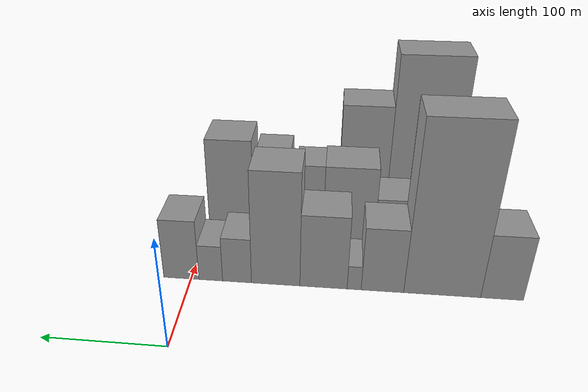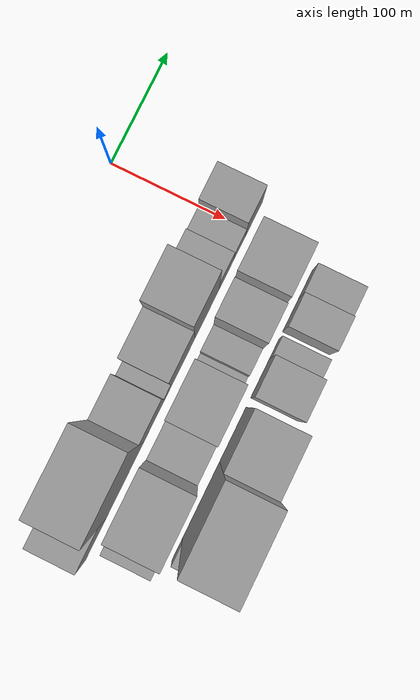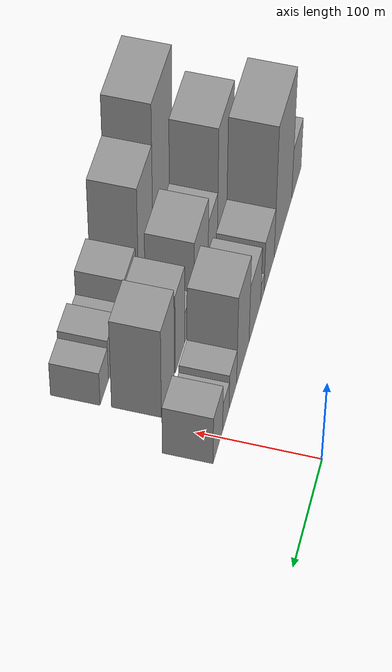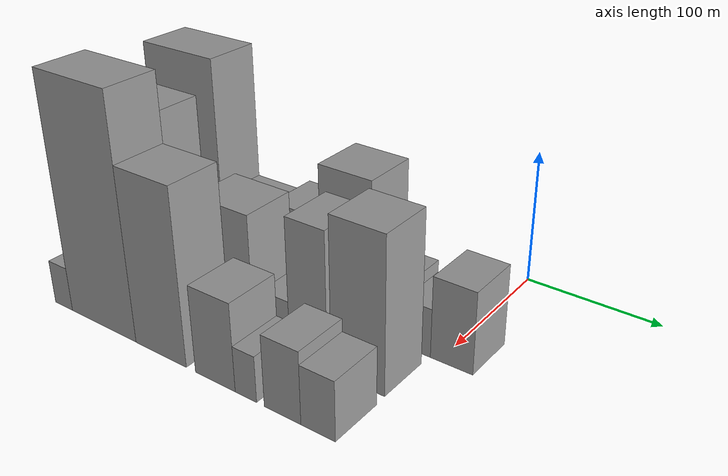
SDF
<sdf version="1.6">
 <world name="default">
  <model name="building_8">
   <static>1</static>
   <pose>100.0000 -262.1933 0 0.000000 0.000000 0.000000</pose>
   <link name="link">
    <pose>0 0 31.50 0 0 0</pose>
    <collision name="collision"><geometry><box><size>40.0000 34.6579 63.0000</size></box></geometry></collision>
    <visual name="visual">
     <cast_shadows>0</cast_shadows>
     <geometry><box><size>40.0000 34.6579 63.0000</size></box></geometry>
     <material>
      <script>
       <uri>model://grey_wall/materials/scripts</uri>
       <uri>model://grey_wall/materials/textures</uri>
       <name>vrc/grey_wall</name>
      </script>
     </material>
    </visual>
   </link>
  </model>
  <model name="building_9">
   <static>1</static>
   <pose>100.0000 -213.1922 0 0.000000 0.000000 0.000000</pose>
   <link name="link">
    <pose>0 0 81.00 0 0 0</pose>
    <collision name="collision"><geometry><box><size>40.0000 63.3443 162.0000</size></box></geometry></collision>
    <visual name="visual">
     <cast_shadows>0</cast_shadows>
     <geometry><box><size>40.0000 63.3443 162.0000</size></box></geometry>
     <material>
      <script>
       <uri>model://grey_wall/materials/scripts</uri>
       <uri>model://grey_wall/materials/textures</uri>
       <name>vrc/grey_wall</name>
      </script>
     </material>
    </visual>
   </link>
  </model>
  <model name="building_10">
   <static>1</static>
   <pose>100.0000 -163.7489 0 0.000000 0.000000 0.000000</pose>
   <link name="link">
    <pose>0 0 31.50 0 0 0</pose>
    <collision name="collision"><geometry><box><size>40.0000 35.5423 63.0000</size></box></geometry></collision>
    <visual name="visual">
     <cast_shadows>0</cast_shadows>
     <geometry><box><size>40.0000 35.5423 63.0000</size></box></geometry>
     <material>
      <script>
       <uri>model://grey_wall/materials/scripts</uri>
       <uri>model://grey_wall/materials/textures</uri>
       <name>vrc/grey_wall</name>
      </script>
     </material>
    </visual>
   </link>
  </model>
  <model name="building_11">
   <static>1</static>
   <pose>100.0000 -140.0537 0 0.000000 0.000000 0.000000</pose>
   <link name="link">
    <pose>0 0 12.00 0 0 0</pose>
    <collision name="collision"><geometry><box><size>40.0000 11.8480 24.0000</size></box></geometry></collision>
    <visual name="visual">
     <cast_shadows>0</cast_shadows>
     <geometry><box><size>40.0000 11.8480 24.0000</size></box></geometry>
     <material>
      <script>
       <uri>model://grey_wall/materials/scripts</uri>
       <uri>model://grey_wall/materials/textures</uri>
       <name>vrc/grey_wall</name>
      </script>
     </material>
    </visual>
   </link>
  </model>
  <model name="building_12">
   <static>1</static>
   <pose>100.0000 -114.0702 0 0.000000 0.000000 0.000000</pose>
   <link name="link">
    <pose>0 0 36.00 0 0 0</pose>
    <collision name="collision"><geometry><box><size>40.0000 40.1191 72.0000</size></box></geometry></collision>
    <visual name="visual">
     <cast_shadows>0</cast_shadows>
     <geometry><box><size>40.0000 40.1191 72.0000</size></box></geometry>
     <material>
      <script>
       <uri>model://grey_wall/materials/scripts</uri>
       <uri>model://grey_wall/materials/textures</uri>
       <name>vrc/grey_wall</name>
      </script>
     </material>
    </visual>
   </link>
  </model>
  <model name="building_13">
   <static>1</static>
   <pose>100.0000 -73.1719 0 0.000000 0.000000 0.000000</pose>
   <link name="link">
    <pose>0 0 55.50 0 0 0</pose>
    <collision name="collision"><geometry><box><size>40.0000 41.6777 111.0000</size></box></geometry></collision>
    <visual name="visual">
     <cast_shadows>0</cast_shadows>
     <geometry><box><size>40.0000 41.6777 111.0000</size></box></geometry>
     <material>
      <script>
       <uri>model://grey_wall/materials/scripts</uri>
       <uri>model://grey_wall/materials/textures</uri>
       <name>vrc/grey_wall</name>
      </script>
     </material>
    </visual>
   </link>
  </model>
  <model name="building_14">
   <static>1</static>
   <pose>100.0000 -39.7930 0 0.000000 0.000000 0.000000</pose>
   <link name="link">
    <pose>0 0 22.50 0 0 0</pose>
    <collision name="collision"><geometry><box><size>40.0000 25.0800 45.0000</size></box></geometry></collision>
    <visual name="visual">
     <cast_shadows>0</cast_shadows>
     <geometry><box><size>40.0000 25.0800 45.0000</size></box></geometry>
     <material>
      <script>
       <uri>model://grey_wall/materials/scripts</uri>
       <uri>model://grey_wall/materials/textures</uri>
       <name>vrc/grey_wall</name>
      </script>
     </material>
    </visual>
   </link>
  </model>
  <model name="building_15">
   <static>1</static>
   <pose>100.0000 -16.8667 0 0.000000 0.000000 0.000000</pose>
   <link name="link">
    <pose>0 0 18.00 0 0 0</pose>
    <collision name="collision"><geometry><box><size>40.0000 20.7725 36.0000</size></box></geometry></collision>
    <visual name="visual">
     <cast_shadows>0</cast_shadows>
     <geometry><box><size>40.0000 20.7725 36.0000</size></box></geometry>
     <material>
      <script>
       <uri>model://grey_wall/materials/scripts</uri>
       <uri>model://grey_wall/materials/textures</uri>
       <name>vrc/grey_wall</name>
      </script>
     </material>
    </visual>
   </link>
  </model>
  <model name="building_16">
   <static>1</static>
   <pose>100.0000 9.0122 0 0.000000 0.000000 0.000000</pose>
   <link name="link">
    <pose>0 0 30.00 0 0 0</pose>
    <collision name="collision"><geometry><box><size>40.0000 30.9853 60.0000</size></box></geometry></collision>
    <visual name="visual">
     <cast_shadows>0</cast_shadows>
     <geometry><box><size>40.0000 30.9853 60.0000</size></box></geometry>
     <material>
      <script>
       <uri>model://grey_wall/materials/scripts</uri>
       <uri>model://grey_wall/materials/textures</uri>
       <name>vrc/grey_wall</name>
      </script>
     </material>
    </visual>
   </link>
  </model>
  <model name="building_41">
   <static>1</static>
   <pose>149.0000 -251.8208 0 0.000000 0.000000 0.000000</pose>
   <link name="link">
    <pose>0 0 22.50 0 0 0</pose>
    <collision name="collision"><geometry><box><size>40.0000 23.1710 45.0000</size></box></geometry></collision>
    <visual name="visual">
     <cast_shadows>0</cast_shadows>
     <geometry><box><size>40.0000 23.1710 45.0000</size></box></geometry>
     <material>
      <script>
       <uri>model://grey_wall/materials/scripts</uri>
       <uri>model://grey_wall/materials/textures</uri>
       <name>vrc/grey_wall</name>
      </script>
     </material>
    </visual>
   </link>
  </model>
  <model name="building_42">
   <static>1</static>
   <pose>149.0000 -214.3614 0 0.000000 0.000000 0.000000</pose>
   <link name="link">
    <pose>0 0 69.00 0 0 0</pose>
    <collision name="collision"><geometry><box><size>40.0000 51.7477 138.0000</size></box></geometry></collision>
    <visual name="visual">
     <cast_shadows>0</cast_shadows>
     <geometry><box><size>40.0000 51.7477 138.0000</size></box></geometry>
     <material>
      <script>
       <uri>model://grey_wall/materials/scripts</uri>
       <uri>model://grey_wall/materials/textures</uri>
       <name>vrc/grey_wall</name>
      </script>
     </material>
    </visual>
   </link>
  </model>
  <model name="building_43">
   <static>1</static>
   <pose>149.0000 -172.9483 0 0.000000 0.000000 0.000000</pose>
   <link name="link">
    <pose>0 0 30.00 0 0 0</pose>
    <collision name="collision"><geometry><box><size>40.0000 31.0785 60.0000</size></box></geometry></collision>
    <visual name="visual">
     <cast_shadows>0</cast_shadows>
     <geometry><box><size>40.0000 31.0785 60.0000</size></box></geometry>
     <material>
      <script>
       <uri>model://grey_wall/materials/scripts</uri>
       <uri>model://grey_wall/materials/textures</uri>
       <name>vrc/grey_wall</name>
      </script>
     </material>
    </visual>
   </link>
  </model>
  <model name="building_44">
   <static>1</static>
   <pose>149.0000 -134.3167 0 0.000000 0.000000 0.000000</pose>
   <link name="link">
    <pose>0 0 45.00 0 0 0</pose>
    <collision name="collision"><geometry><box><size>40.0000 46.1847 90.0000</size></box></geometry></collision>
    <visual name="visual">
     <cast_shadows>0</cast_shadows>
     <geometry><box><size>40.0000 46.1847 90.0000</size></box></geometry>
     <material>
      <script>
       <uri>model://grey_wall/materials/scripts</uri>
       <uri>model://grey_wall/materials/textures</uri>
       <name>vrc/grey_wall</name>
      </script>
     </material>
    </visual>
   </link>
  </model>
  <model name="building_45">
   <static>1</static>
   <pose>149.0000 -107.1081 0 0.000000 0.000000 0.000000</pose>
   <link name="link">
    <pose>0 0 9.00 0 0 0</pose>
    <collision name="collision"><geometry><box><size>40.0000 8.2325 18.0000</size></box></geometry></collision>
    <visual name="visual">
     <cast_shadows>0</cast_shadows>
     <geometry><box><size>40.0000 8.2325 18.0000</size></box></geometry>
     <material>
      <script>
       <uri>model://grey_wall/materials/scripts</uri>
       <uri>model://grey_wall/materials/textures</uri>
       <name>vrc/grey_wall</name>
      </script>
     </material>
    </visual>
   </link>
  </model>
  <model name="building_46">
   <static>1</static>
   <pose>149.0000 -91.9620 0 0.000000 0.000000 0.000000</pose>
   <link name="link">
    <pose>0 0 19.50 0 0 0</pose>
    <collision name="collision"><geometry><box><size>40.0000 22.0598 39.0000</size></box></geometry></collision>
    <visual name="visual">
     <cast_shadows>0</cast_shadows>
     <geometry><box><size>40.0000 22.0598 39.0000</size></box></geometry>
     <material>
      <script>
       <uri>model://grey_wall/materials/scripts</uri>
       <uri>model://grey_wall/materials/textures</uri>
       <name>vrc/grey_wall</name>
      </script>
     </material>
    </visual>
   </link>
  </model>
  <model name="building_47">
   <static>1</static>
   <pose>149.0000 -65.8754 0 0.000000 0.000000 0.000000</pose>
   <link name="link">
    <pose>0 0 49.50 0 0 0</pose>
    <collision name="collision"><geometry><box><size>40.0000 30.1134 99.0000</size></box></geometry></collision>
    <visual name="visual">
     <cast_shadows>0</cast_shadows>
     <geometry><box><size>40.0000 30.1134 99.0000</size></box></geometry>
     <material>
      <script>
       <uri>model://grey_wall/materials/scripts</uri>
       <uri>model://grey_wall/materials/textures</uri>
       <name>vrc/grey_wall</name>
      </script>
     </material>
    </visual>
   </link>
  </model>
  <model name="building_48">
   <static>1</static>
   <pose>149.0000 -27.6340 0 0.000000 0.000000 0.000000</pose>
   <link name="link">
    <pose>0 0 55.50 0 0 0</pose>
    <collision name="collision"><geometry><box><size>40.0000 40.3695 111.0000</size></box></geometry></collision>
    <visual name="visual">
     <cast_shadows>0</cast_shadows>
     <geometry><box><size>40.0000 40.3695 111.0000</size></box></geometry>
     <material>
      <script>
       <uri>model://grey_wall/materials/scripts</uri>
       <uri>model://grey_wall/materials/textures</uri>
       <name>vrc/grey_wall</name>
      </script>
     </material>
    </visual>
   </link>
  </model>
  <model name="building_73">
   <static>1</static>
   <pose>198.0000 -241.4409 0 0.000000 0.000000 0.000000</pose>
   <link name="link">
    <pose>0 0 16.50 0 0 0</pose>
    <collision name="collision"><geometry><box><size>40.0000 17.7215 33.0000</size></box></geometry></collision>
    <visual name="visual">
     <cast_shadows>0</cast_shadows>
     <geometry><box><size>40.0000 17.7215 33.0000</size></box></geometry>
     <material>
      <script>
       <uri>model://grey_wall/materials/scripts</uri>
       <uri>model://grey_wall/materials/textures</uri>
       <name>vrc/grey_wall</name>
      </script>
     </material>
    </visual>
   </link>
  </model>
  <model name="building_74">
   <static>1</static>
   <pose>198.0000 -201.0453 0 0.000000 0.000000 0.000000</pose>
   <link name="link">
    <pose>0 0 87.00 0 0 0</pose>
    <collision name="collision"><geometry><box><size>40.0000 63.0697 174.0000</size></box></geometry></collision>
    <visual name="visual">
     <cast_shadows>0</cast_shadows>
     <geometry><box><size>40.0000 63.0697 174.0000</size></box></geometry>
     <material>
      <script>
       <uri>model://grey_wall/materials/scripts</uri>
       <uri>model://grey_wall/materials/textures</uri>
       <name>vrc/grey_wall</name>
      </script>
     </material>
    </visual>
   </link>
  </model>
  <model name="building_75">
   <static>1</static>
   <pose>198.0000 -146.6977 0 0.000000 0.000000 0.000000</pose>
   <link name="link">
    <pose>0 0 63.00 0 0 0</pose>
    <collision name="collision"><geometry><box><size>40.0000 45.6255 126.0000</size></box></geometry></collision>
    <visual name="visual">
     <cast_shadows>0</cast_shadows>
     <geometry><box><size>40.0000 45.6255 126.0000</size></box></geometry>
     <material>
      <script>
       <uri>model://grey_wall/materials/scripts</uri>
       <uri>model://grey_wall/materials/textures</uri>
       <name>vrc/grey_wall</name>
      </script>
     </material>
    </visual>
   </link>
  </model>
  <model name="building_76">
   <static>1</static>
   <pose>198.0000 -99.2928 0 0.000000 0.000000 0.000000</pose>
   <link name="link">
    <pose>0 0 31.50 0 0 0</pose>
    <collision name="collision"><geometry><box><size>40.0000 33.1843 63.0000</size></box></geometry></collision>
    <visual name="visual">
     <cast_shadows>0</cast_shadows>
     <geometry><box><size>40.0000 33.1843 63.0000</size></box></geometry>
     <material>
      <script>
       <uri>model://grey_wall/materials/scripts</uri>
       <uri>model://grey_wall/materials/textures</uri>
       <name>vrc/grey_wall</name>
      </script>
     </material>
    </visual>
   </link>
  </model>
  <model name="building_77">
   <static>1</static>
   <pose>198.0000 -74.1456 0 0.000000 0.000000 0.000000</pose>
   <link name="link">
    <pose>0 0 16.50 0 0 0</pose>
    <collision name="collision"><geometry><box><size>40.0000 17.1100 33.0000</size></box></geometry></collision>
    <visual name="visual">
     <cast_shadows>0</cast_shadows>
     <geometry><box><size>40.0000 17.1100 33.0000</size></box></geometry>
     <material>
      <script>
       <uri>model://grey_wall/materials/scripts</uri>
       <uri>model://grey_wall/materials/textures</uri>
       <name>vrc/grey_wall</name>
      </script>
     </material>
    </visual>
   </link>
  </model>
  <model name="building_78">
   <static>1</static>
   <pose>198.0000 -45.7106 0 0.000000 0.000000 0.000000</pose>
   <link name="link">
    <pose>0 0 25.50 0 0 0</pose>
    <collision name="collision"><geometry><box><size>40.0000 27.7600 51.0000</size></box></geometry></collision>
    <visual name="visual">
     <cast_shadows>0</cast_shadows>
     <geometry><box><size>40.0000 27.7600 51.0000</size></box></geometry>
     <material>
      <script>
       <uri>model://grey_wall/materials/scripts</uri>
       <uri>model://grey_wall/materials/textures</uri>
       <name>vrc/grey_wall</name>
      </script>
     </material>
    </visual>
   </link>
  </model>
  <model name="building_79">
   <static>1</static>
   <pose>198.0000 -19.3250 0 0.000000 0.000000 0.000000</pose>
   <link name="link">
    <pose>0 0 21.00 0 0 0</pose>
    <collision name="collision"><geometry><box><size>40.0000 25.0113 42.0000</size></box></geometry></collision>
    <visual name="visual">
     <cast_shadows>0</cast_shadows>
     <geometry><box><size>40.0000 25.0113 42.0000</size></box></geometry>
     <material>
      <script>
       <uri>model://grey_wall/materials/scripts</uri>
       <uri>model://grey_wall/materials/textures</uri>
       <name>vrc/grey_wall</name>
      </script>
     </material>
    </visual>
   </link>
  </model>
 </world>
</sdf>
